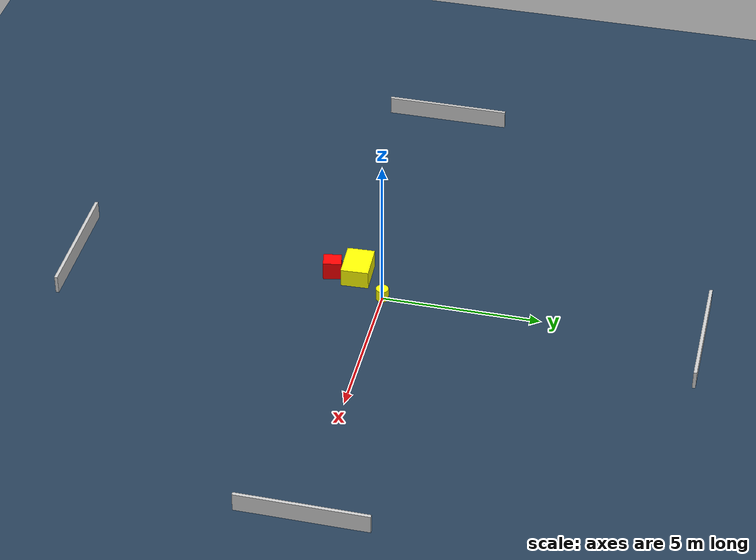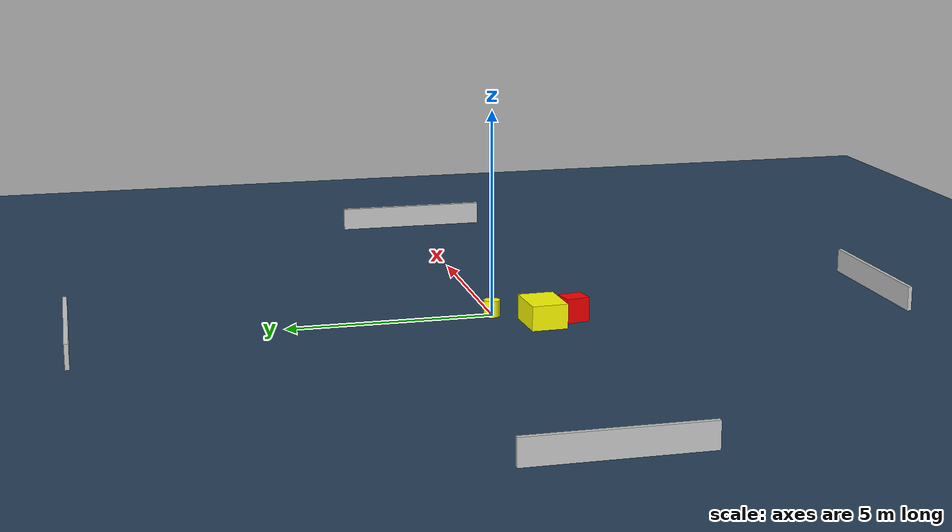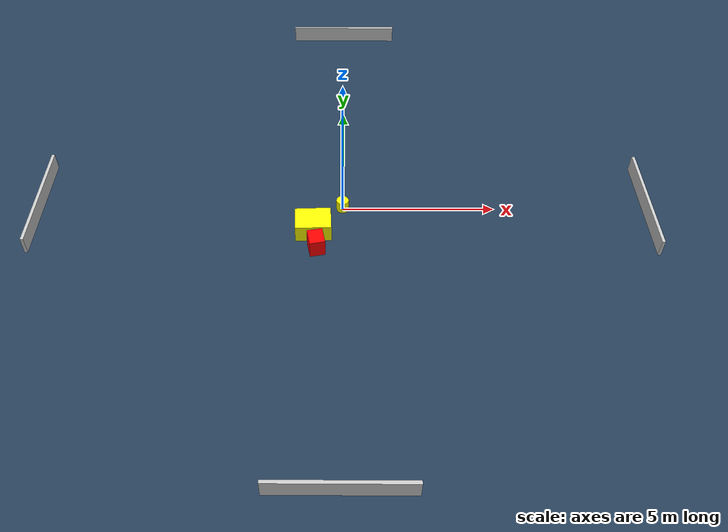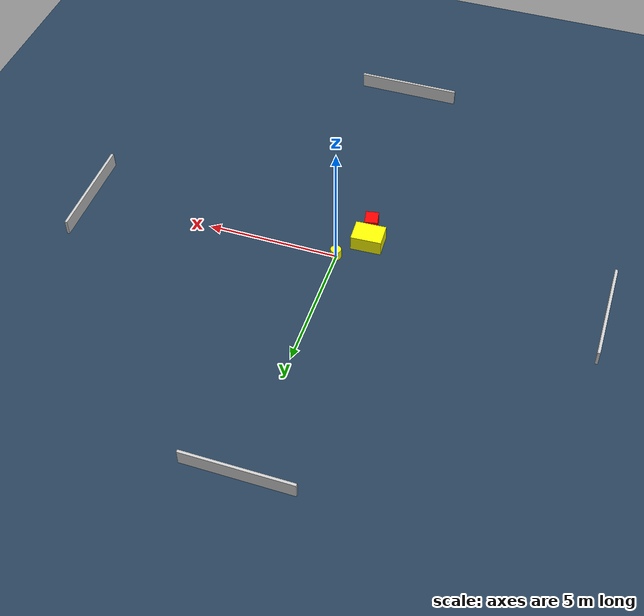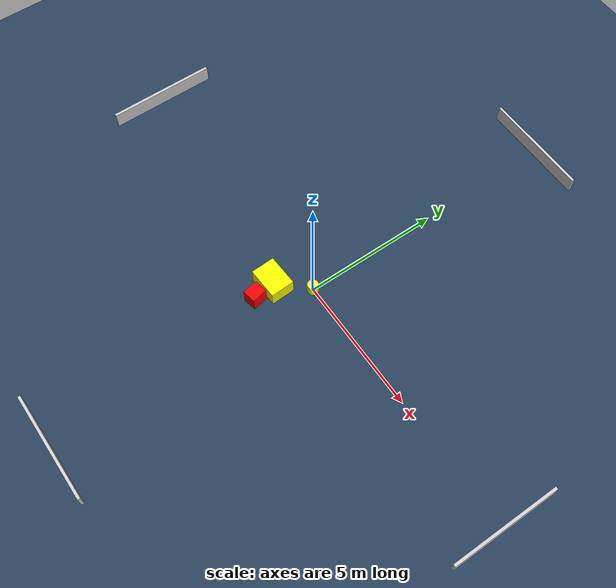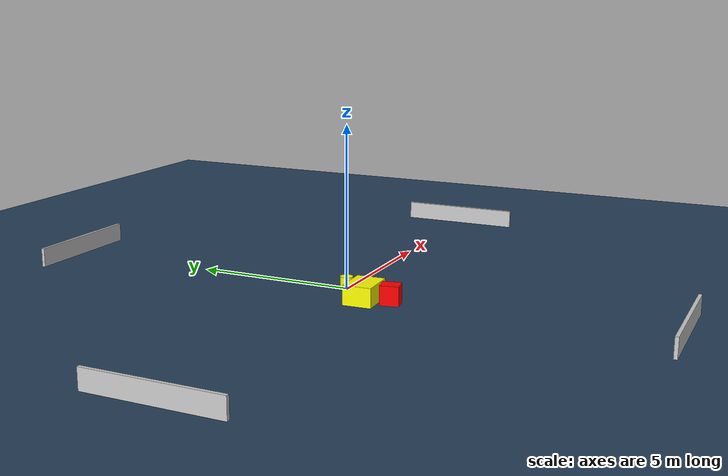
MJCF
<?xml version="1.0" ?>
<mujoco model="generated_environment">
  <option timestep="0.01" integrator="RK4" cone="elliptic"/>
  <default>
    <geom density="1"/>
  </default>
  <asset>
    <texture builtin="gradient" height="3072" name="skybox" rgb1="0.3 0.5 0.7" rgb2="0 0 0" type="skybox" width="512"/>
    <texture builtin="checker" height="300" name="groundplane" rgb1="0.2 0.3 0.4" rgb2="0.1 0.2 0.3" type="2d" width="300"/>
    <material name="groundplane" reflectance="0.2" texrepeat="5 5" texture="groundplane"/>
  </asset>
  <worldbody>
    <light dir="0 0 -1" directional="true" pos="0 0 1.5"/>
    <geom condim="3" friction="0.5 0.005 0.001" material="groundplane" name="floor" pos="0 0 0" size="0 0 0.05" type="plane"/>
    <body name="walls">
      <geom name="wall_1" condim="4" pos="-10.0 0.0 0.3" rgba="0.800000011920929 0.800000011920929 0.800000011920929 1.0" size="0.05 2.0 0.3" type="box"/>
      <geom name="wall_2" condim="4" pos="10.0 0.0 0.3" rgba="0.800000011920929 0.800000011920929 0.800000011920929 1.0" size="0.05 2.0 0.3" type="box"/>
      <geom name="wall_3" condim="4" pos="0.0 -10.0 0.3" rgba="0.800000011920929 0.800000011920929 0.800000011920929 1.0" size="2.0 0.05 0.3" type="box"/>
      <geom name="wall_4" condim="4" pos="0.0 10.0 0.3" rgba="0.800000011920929 0.800000011920929 0.800000011920929 1.0" size="2.0 0.05 0.3" type="box"/>
    </body>
    <body name="robot">
      <joint name="joint_x" type="slide" pos="0 0 0" axis="1 0 0"/>
      <joint name="joint_y" type="slide" pos="0 0 0" axis="0 1 0"/>
      <geom name="robot" type="cylinder" pos="0.0 0.0 0.2" size="0.2 0.2 0.0" mass="5.0" friction="1.0 0.005 0.0001" condim="4" rgba="1.0 1.0 0.0 1.0"/>
    </body>
    <body name="obstacle_1_movable">
      <geom name="obstacle_1_movable" condim="4" pos="-0.9435816848432916 -1.0108107126092145 0.3" euler="0 0 182.48230989441097" friction="0.0 0.005 0.001" rgba="1.0 1.0 0.0 1.0" size="0.5799953115699179 0.4394739504880101 0.3" type="box" mass="0.1"/>
      <joint type="free"/>
    </body>
    <body name="obstacle_2_static">
      <geom name="obstacle_2_static" condim="4" pos="-0.8273187330298811 -1.8059338141890704 0.3" euler="0 0 190.9946239237601" friction="0.0 0.005 0.001" rgba="1.0 0.0 0.0 1.0" size="0.24745378755486833 0.28963253987383153 0.3" type="box"/>
    </body>
  </worldbody>
  <actuator>
    <motor name="actuator_x" joint="joint_x" gear="1" ctrlrange="-1 1"/>
    <motor name="actuator_y" joint="joint_y" gear="1" ctrlrange="-1 1"/>
  </actuator>
</mujoco>
